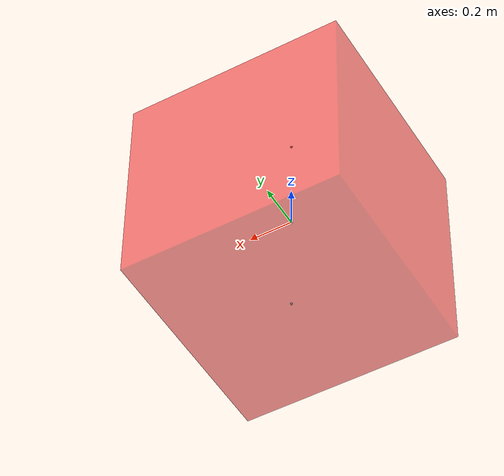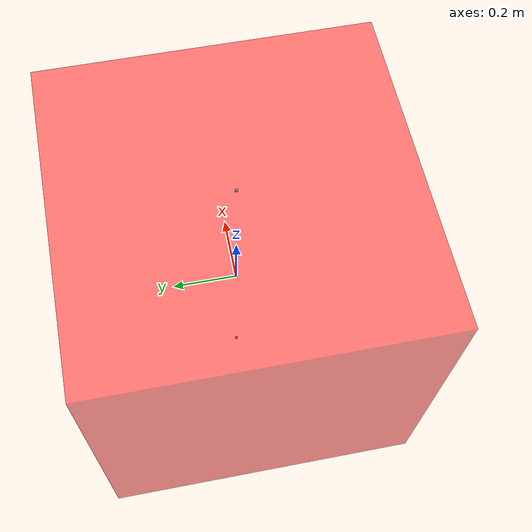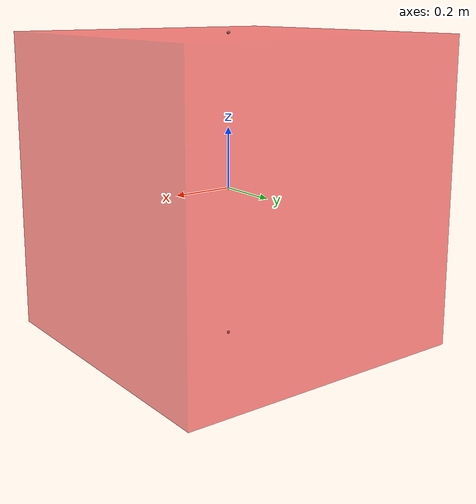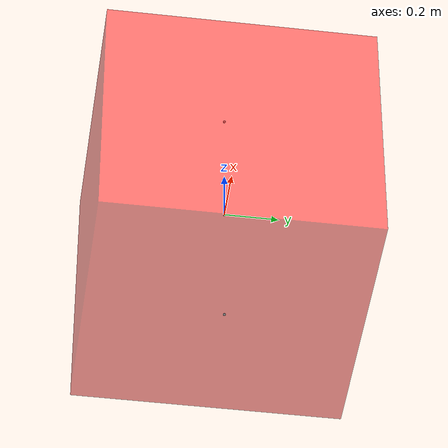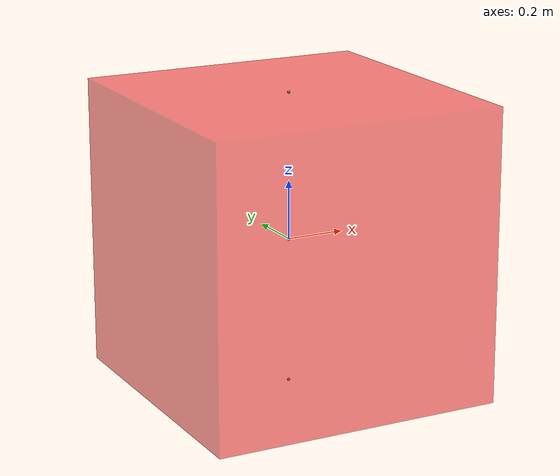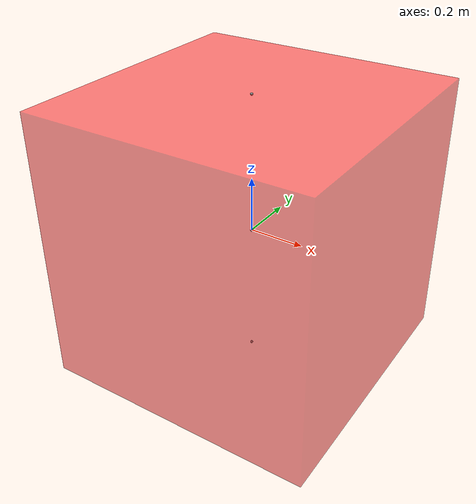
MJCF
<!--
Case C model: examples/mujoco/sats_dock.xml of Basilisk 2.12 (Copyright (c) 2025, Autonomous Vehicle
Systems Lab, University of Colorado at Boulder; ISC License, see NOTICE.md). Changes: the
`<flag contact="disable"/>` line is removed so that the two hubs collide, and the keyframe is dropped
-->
<mujoco>
	<option gravity="0 0 0"/>

	<worldbody>
		<body name="hub_1">
			<freejoint/>
			<geom name="hub_1_box" type="box" size="0.5 0.5 0.5" rgba="1 0 0 0.5" density="1"/>
			<site name="hub_1_com"/>
			<site name="hub_1_contact_point" pos="0 0 -0.5"/>
		</body>

		<body name="hub_2">
			<freejoint/>
			<geom name="hub_2_box" type="box" size="0.5 0.5 0.5" rgba="0 0 1 0.5" density="1"/>
			<site name="hub_2_com"/>
			<site name="hub_2_contact_point" pos="0 0 0.5"/>
		</body>

	</worldbody>

	<actuator>
		<motor name="hub_1_thruster" site="hub_1_com" gear="1 0 0 0 0 0"/>
        <motor name="hub_2_thruster" site="hub_2_com" gear="0 0 1 0 0 0"/>
	</actuator>

	<equality>
		<weld name="dock" site1="hub_1_contact_point" site2="hub_2_contact_point" active="false"/>
	</equality>

</mujoco>
